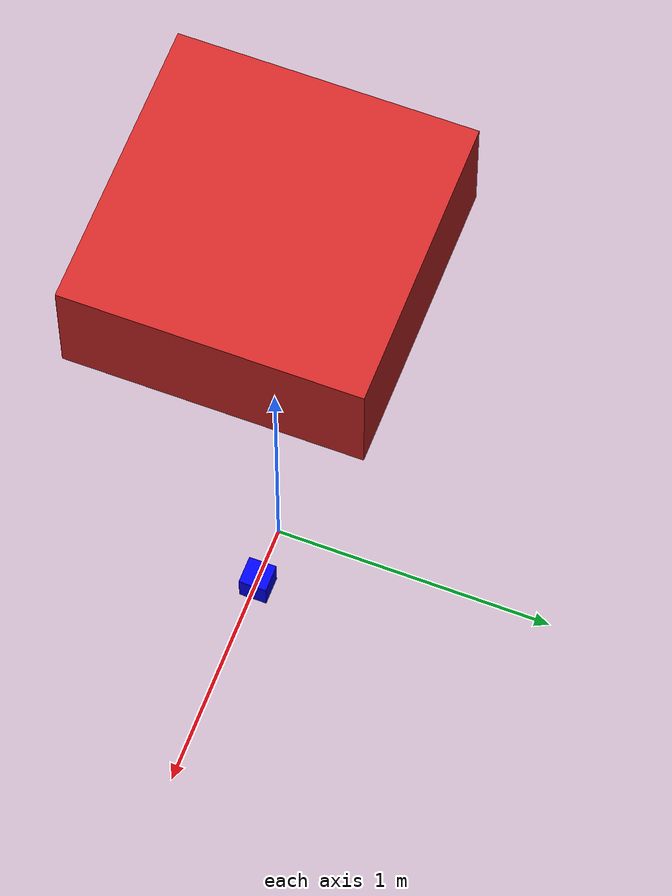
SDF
<?xml version="1.0" ?>
<!-- SDF model file for the drone, version 1.6 specification -->
<sdf version="1.6">
  <!-- Main drone model definition -->
  <model name="drone">
    <!-- Base link represents the main body of the drone -->
    <link name="base_link">
      <pose>0 0 2 0 0 0</pose>
      <inertial>
        <mass>1.5</mass>
        <inertia>
          <ixx>0.029125</ixx>
          <ixy>0</ixy>
          <ixz>0</ixz>
          <iyy>0.029125</iyy>
          <iyz>0</iyz>
          <izz>0.055225</izz>
        </inertia>
      </inertial>
      <collision name="collision">
        <geometry>
          <box>
            <size>1.0 1.0 0.4</size>
          </box>
        </geometry>
      </collision>
      <visual name="visual">
        <geometry>
          <box>
            <size>1.0 1.0 0.4</size>
          </box>
        </geometry>
        <material>
          <script>
            <uri>file://media/materials/scripts/gazebo.material</uri>
            <name>Gazebo/Red</name>
          </script>
          <ambient>1 0 0 1</ambient>
          <diffuse>1 0 0 1</diffuse>
          <specular>1 1 1 1</specular>
          <emissive>0.5 0 0 1</emissive>
        </material>
      </visual>
    </link>
    <!-- Camera link -->
    <link name="camera_link">
      <pose>0.2 0 0 0 0 0</pose>
      <visual name="visual">
        <geometry>
          <box>
            <size>0.1 0.1 0.1</size>
          </box>
        </geometry>
        <material>
          <ambient>0 0 1 1</ambient>
          <diffuse>0 0 1 1</diffuse>
        </material>
      </visual>
      <sensor name="camera" type="camera">
        <camera>
          <horizontal_fov>1.047</horizontal_fov>
          <image>
            <width>640</width>
            <height>480</height>
          </image>
          <clip>
            <near>0.1</near>
            <far>100</far>
          </clip>
        </camera>
        <always_on>1</always_on>
        <update_rate>30</update_rate>
        <visualize>true</visualize>
      </sensor>
    </link>
    <joint name="camera_joint" type="fixed">
      <parent>base_link</parent>
      <child>camera_link</child>
    </joint>
  </model>
</sdf>
